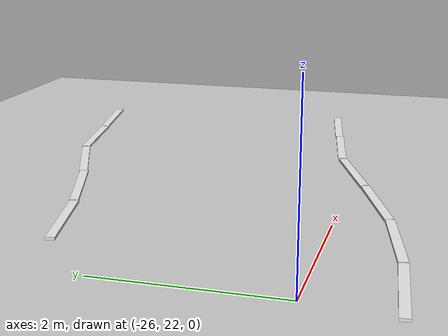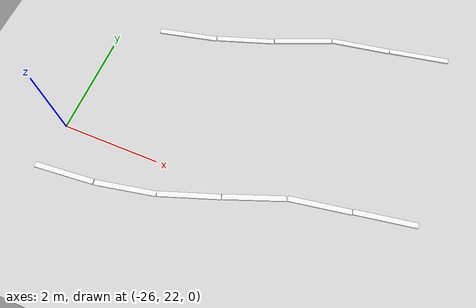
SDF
<sdf version="1.7">
 <world name="default">
  <model name="ground_plane">
   <static>1</static>
   <link name="link">
    <collision name="collision">
     <geometry><plane><normal>0 0 1</normal><size>100 100</size></plane></geometry>
     <surface><friction><ode><mu>100</mu><mu2>50</mu2></ode></friction></surface>
    </collision>
    <visual name="visual">
     <cast_shadows>0</cast_shadows>
     <geometry><plane><normal>0 0 1</normal><size>100 100</size></plane></geometry>
     <material>
      <script><uri>file://media/materials/scripts/gazebo.material</uri><name>Gazebo/Grey</name></script>
     </material>
    </visual>
   </link>
  </model>
  <model name="road_way_clone_clone_clone_0_clone_clone_clone_clone_0_clone_0_clone_0_clone_clone_clone_clone_clone_clone">
   <link name="link">
    <inertial>
     <mass>1</mass>
     <inertia>
      <ixx>0.166667</ixx>
      <ixy>0</ixy>
      <ixz>0</ixz>
      <iyy>0.166667</iyy>
      <iyz>0</iyz>
      <izz>0.166667</izz>
     </inertia>
    </inertial>
    <visual name="visual">
     <geometry><box><size>0.106644 1.22348 0.03129</size></box></geometry>
     <material>
      <script><name>Gazebo/White</name><uri>file://media/materials/scripts/gazebo.material</uri></script>
      <shader type="pixel"><normal_map>__default__</normal_map></shader>
      <ambient>1 1 1 1</ambient>
      <diffuse>1 1 1 1</diffuse>
      <specular>0 0 0 1</specular>
      <emissive>0 0 0 1</emissive>
     </material>
    </visual>
    <collision name="collision">
     <geometry><box><size>0.10644 1.22348 0.03129</size></box></geometry>
     <surface>
      <friction>
       <ode><mu>1</mu><mu2>1</mu2><fdir1>0 0 0</fdir1><slip1>0</slip1><slip2>0</slip2></ode>
       <torsional>
        <coefficient>1</coefficient>
        <patch_radius>0</patch_radius>
        <surface_radius>0</surface_radius>
        <use_patch_radius>1</use_patch_radius>
        <ode><slip>0</slip></ode>
       </torsional>
      </friction>
      <bounce><restitution_coefficient>0</restitution_coefficient><threshold>1e+06</threshold></bounce>
      <contact>
       <collide_without_contact>0</collide_without_contact>
       <collide_without_contact_bitmask>1</collide_without_contact_bitmask>
       <collide_bitmask>1</collide_bitmask>
       <ode>
        <soft_cfm>0</soft_cfm>
        <soft_erp>0.2</soft_erp>
        <kp>1e+13</kp>
        <kd>1</kd>
        <max_vel>0.01</max_vel>
        <min_depth>0</min_depth>
       </ode>
       <bullet>
        <split_impulse>1</split_impulse>
        <split_impulse_penetration_threshold>-0.01</split_impulse_penetration_threshold>
        <soft_cfm>0</soft_cfm>
        <soft_erp>0.2</soft_erp>
        <kp>1e+13</kp>
        <kd>1</kd>
       </bullet>
      </contact>
     </surface>
    </collision>
   </link>
   <static>0</static>
   <pose>-19.5677 22.5895 0.015638 -1.1e-05 -0 1.73845</pose>
  </model>
  <model name="road_way_clone_clone_clone_0_clone_clone_clone_clone_0_clone_0_clone_0_clone_clone_clone_clone_clone_clone_clone">
   <link name="link">
    <inertial>
     <mass>1</mass>
     <inertia>
      <ixx>0.166667</ixx>
      <ixy>0</ixy>
      <ixz>0</ixz>
      <iyy>0.166667</iyy>
      <iyz>0</iyz>
      <izz>0.166667</izz>
     </inertia>
    </inertial>
    <visual name="visual">
     <geometry><box><size>0.106644 1.22348 0.03129</size></box></geometry>
     <material>
      <script><name>Gazebo/White</name><uri>file://media/materials/scripts/gazebo.material</uri></script>
      <shader type="pixel"><normal_map>__default__</normal_map></shader>
      <ambient>1 1 1 1</ambient>
      <diffuse>1 1 1 1</diffuse>
      <specular>0 0 0 1</specular>
      <emissive>0 0 0 1</emissive>
     </material>
    </visual>
    <collision name="collision">
     <geometry><box><size>0.10644 1.22348 0.03129</size></box></geometry>
     <surface>
      <friction>
       <ode><mu>1</mu><mu2>1</mu2><fdir1>0 0 0</fdir1><slip1>0</slip1><slip2>0</slip2></ode>
       <torsional>
        <coefficient>1</coefficient>
        <patch_radius>0</patch_radius>
        <surface_radius>0</surface_radius>
        <use_patch_radius>1</use_patch_radius>
        <ode><slip>0</slip></ode>
       </torsional>
      </friction>
      <bounce><restitution_coefficient>0</restitution_coefficient><threshold>1e+06</threshold></bounce>
      <contact>
       <collide_without_contact>0</collide_without_contact>
       <collide_without_contact_bitmask>1</collide_without_contact_bitmask>
       <collide_bitmask>1</collide_bitmask>
       <ode>
        <soft_cfm>0</soft_cfm>
        <soft_erp>0.2</soft_erp>
        <kp>1e+13</kp>
        <kd>1</kd>
        <max_vel>0.01</max_vel>
        <min_depth>0</min_depth>
       </ode>
       <bullet>
        <split_impulse>1</split_impulse>
        <split_impulse_penetration_threshold>-0.01</split_impulse_penetration_threshold>
        <soft_cfm>0</soft_cfm>
        <soft_erp>0.2</soft_erp>
        <kp>1e+13</kp>
        <kd>1</kd>
       </bullet>
      </contact>
     </surface>
    </collision>
   </link>
   <static>0</static>
   <pose>-19.9178 26.2077 0.015638 1.1e-05 -0 1.75555</pose>
  </model>
  <model name="road_way_clone_clone_clone_0_clone_clone_clone_clone_0_clone_0_clone_0_clone_clone_clone_clone_clone_clone_clone_0">
   <link name="link">
    <inertial>
     <mass>1</mass>
     <inertia>
      <ixx>0.166667</ixx>
      <ixy>0</ixy>
      <ixz>0</ixz>
      <iyy>0.166667</iyy>
      <iyz>0</iyz>
      <izz>0.166667</izz>
     </inertia>
    </inertial>
    <visual name="visual">
     <geometry><box><size>0.106644 1.22348 0.03129</size></box></geometry>
     <material>
      <script><name>Gazebo/White</name><uri>file://media/materials/scripts/gazebo.material</uri></script>
      <shader type="pixel"><normal_map>__default__</normal_map></shader>
      <ambient>1 1 1 1</ambient>
      <diffuse>1 1 1 1</diffuse>
      <specular>0 0 0 1</specular>
      <emissive>0 0 0 1</emissive>
     </material>
    </visual>
    <collision name="collision">
     <geometry><box><size>0.10644 1.22348 0.03129</size></box></geometry>
     <surface>
      <friction>
       <ode><mu>1</mu><mu2>1</mu2><fdir1>0 0 0</fdir1><slip1>0</slip1><slip2>0</slip2></ode>
       <torsional>
        <coefficient>1</coefficient>
        <patch_radius>0</patch_radius>
        <surface_radius>0</surface_radius>
        <use_patch_radius>1</use_patch_radius>
        <ode><slip>0</slip></ode>
       </torsional>
      </friction>
      <bounce><restitution_coefficient>0</restitution_coefficient><threshold>1e+06</threshold></bounce>
      <contact>
       <collide_without_contact>0</collide_without_contact>
       <collide_without_contact_bitmask>1</collide_without_contact_bitmask>
       <collide_bitmask>1</collide_bitmask>
       <ode>
        <soft_cfm>0</soft_cfm>
        <soft_erp>0.2</soft_erp>
        <kp>1e+13</kp>
        <kd>1</kd>
        <max_vel>0.01</max_vel>
        <min_depth>0</min_depth>
       </ode>
       <bullet>
        <split_impulse>1</split_impulse>
        <split_impulse_penetration_threshold>-0.01</split_impulse_penetration_threshold>
        <soft_cfm>0</soft_cfm>
        <soft_erp>0.2</soft_erp>
        <kp>1e+13</kp>
        <kd>1</kd>
       </bullet>
      </contact>
     </surface>
    </collision>
   </link>
   <static>0</static>
   <pose>-21.125 25.9843 0.015638 -1.1e-05 0 1.73886</pose>
  </model>
  <model name="road_way_clone_clone_clone_0_clone_clone_clone_clone_0_clone_0_clone_0_clone_clone_clone_clone_clone_clone_clone_1">
   <link name="link">
    <inertial>
     <mass>1</mass>
     <inertia>
      <ixx>0.166667</ixx>
      <ixy>0</ixy>
      <ixz>0</ixz>
      <iyy>0.166667</iyy>
      <iyz>0</iyz>
      <izz>0.166667</izz>
     </inertia>
    </inertial>
    <visual name="visual">
     <geometry><box><size>0.106644 1.22348 0.03129</size></box></geometry>
     <material>
      <script><name>Gazebo/White</name><uri>file://media/materials/scripts/gazebo.material</uri></script>
      <shader type="pixel"><normal_map>__default__</normal_map></shader>
      <ambient>1 1 1 1</ambient>
      <diffuse>1 1 1 1</diffuse>
      <specular>0 0 0 1</specular>
      <emissive>0 0 0 1</emissive>
     </material>
    </visual>
    <collision name="collision">
     <geometry><box><size>0.10644 1.22348 0.03129</size></box></geometry>
     <surface>
      <friction>
       <ode><mu>1</mu><mu2>1</mu2><fdir1>0 0 0</fdir1><slip1>0</slip1><slip2>0</slip2></ode>
       <torsional>
        <coefficient>1</coefficient>
        <patch_radius>0</patch_radius>
        <surface_radius>0</surface_radius>
        <use_patch_radius>1</use_patch_radius>
        <ode><slip>0</slip></ode>
       </torsional>
      </friction>
      <bounce><restitution_coefficient>0</restitution_coefficient><threshold>1e+06</threshold></bounce>
      <contact>
       <collide_without_contact>0</collide_without_contact>
       <collide_without_contact_bitmask>1</collide_without_contact_bitmask>
       <collide_bitmask>1</collide_bitmask>
       <ode>
        <soft_cfm>0</soft_cfm>
        <soft_erp>0.2</soft_erp>
        <kp>1e+13</kp>
        <kd>1</kd>
        <max_vel>0.01</max_vel>
        <min_depth>0</min_depth>
       </ode>
       <bullet>
        <split_impulse>1</split_impulse>
        <split_impulse_penetration_threshold>-0.01</split_impulse_penetration_threshold>
        <soft_cfm>0</soft_cfm>
        <soft_erp>0.2</soft_erp>
        <kp>1e+13</kp>
        <kd>1</kd>
       </bullet>
      </contact>
     </surface>
    </collision>
   </link>
   <static>0</static>
   <pose>-20.7816 22.3719 0.015638 -1.1e-05 0 1.73886</pose>
  </model>
  <model name="road_way_clone_clone_clone_0_clone_clone_clone_clone_0_clone_0_clone_0_clone_clone_clone_clone_clone_clone_clone_2">
   <link name="link">
    <inertial>
     <mass>1</mass>
     <inertia>
      <ixx>0.166667</ixx>
      <ixy>0</ixy>
      <ixz>0</ixz>
      <iyy>0.166667</iyy>
      <iyz>0</iyz>
      <izz>0.166667</izz>
     </inertia>
    </inertial>
    <visual name="visual">
     <geometry><box><size>0.106644 1.22348 0.03129</size></box></geometry>
     <material>
      <script><name>Gazebo/White</name><uri>file://media/materials/scripts/gazebo.material</uri></script>
      <shader type="pixel"><normal_map>__default__</normal_map></shader>
      <ambient>1 1 1 1</ambient>
      <diffuse>1 1 1 1</diffuse>
      <specular>0 0 0 1</specular>
      <emissive>0 0 0 1</emissive>
     </material>
    </visual>
    <collision name="collision">
     <geometry><box><size>0.10644 1.22348 0.03129</size></box></geometry>
     <surface>
      <friction>
       <ode><mu>1</mu><mu2>1</mu2><fdir1>0 0 0</fdir1><slip1>0</slip1><slip2>0</slip2></ode>
       <torsional>
        <coefficient>1</coefficient>
        <patch_radius>0</patch_radius>
        <surface_radius>0</surface_radius>
        <use_patch_radius>1</use_patch_radius>
        <ode><slip>0</slip></ode>
       </torsional>
      </friction>
      <bounce><restitution_coefficient>0</restitution_coefficient><threshold>1e+06</threshold></bounce>
      <contact>
       <collide_without_contact>0</collide_without_contact>
       <collide_without_contact_bitmask>1</collide_without_contact_bitmask>
       <collide_bitmask>1</collide_bitmask>
       <ode>
        <soft_cfm>0</soft_cfm>
        <soft_erp>0.2</soft_erp>
        <kp>1e+13</kp>
        <kd>1</kd>
        <max_vel>0.01</max_vel>
        <min_depth>0</min_depth>
       </ode>
       <bullet>
        <split_impulse>1</split_impulse>
        <split_impulse_penetration_threshold>-0.01</split_impulse_penetration_threshold>
        <soft_cfm>0</soft_cfm>
        <soft_erp>0.2</soft_erp>
        <kp>1e+13</kp>
        <kd>1</kd>
       </bullet>
      </contact>
     </surface>
    </collision>
   </link>
   <static>0</static>
   <pose>-22.3044 25.6389 0.015638 -1.1e-05 -0 1.95789</pose>
  </model>
  <model name="road_way_clone_clone_clone_0_clone_clone_clone_clone_0_clone_0_clone_0_clone_clone_clone_clone_clone_clone_clone_3">
   <link name="link">
    <inertial>
     <mass>1</mass>
     <inertia>
      <ixx>0.166667</ixx>
      <ixy>0</ixy>
      <ixz>0</ixz>
      <iyy>0.166667</iyy>
      <iyz>0</iyz>
      <izz>0.166667</izz>
     </inertia>
    </inertial>
    <visual name="visual">
     <geometry><box><size>0.106644 1.22348 0.03129</size></box></geometry>
     <material>
      <script><name>Gazebo/White</name><uri>file://media/materials/scripts/gazebo.material</uri></script>
      <shader type="pixel"><normal_map>__default__</normal_map></shader>
      <ambient>1 1 1 1</ambient>
      <diffuse>1 1 1 1</diffuse>
      <specular>0 0 0 1</specular>
      <emissive>0 0 0 1</emissive>
     </material>
    </visual>
    <collision name="collision">
     <geometry><box><size>0.10644 1.22348 0.03129</size></box></geometry>
     <surface>
      <friction>
       <ode><mu>1</mu><mu2>1</mu2><fdir1>0 0 0</fdir1><slip1>0</slip1><slip2>0</slip2></ode>
       <torsional>
        <coefficient>1</coefficient>
        <patch_radius>0</patch_radius>
        <surface_radius>0</surface_radius>
        <use_patch_radius>1</use_patch_radius>
        <ode><slip>0</slip></ode>
       </torsional>
      </friction>
      <bounce><restitution_coefficient>0</restitution_coefficient><threshold>1e+06</threshold></bounce>
      <contact>
       <collide_without_contact>0</collide_without_contact>
       <collide_without_contact_bitmask>1</collide_without_contact_bitmask>
       <collide_bitmask>1</collide_bitmask>
       <ode>
        <soft_cfm>0</soft_cfm>
        <soft_erp>0.2</soft_erp>
        <kp>1e+13</kp>
        <kd>1</kd>
        <max_vel>0.01</max_vel>
        <min_depth>0</min_depth>
       </ode>
       <bullet>
        <split_impulse>1</split_impulse>
        <split_impulse_penetration_threshold>-0.01</split_impulse_penetration_threshold>
        <soft_cfm>0</soft_cfm>
        <soft_erp>0.2</soft_erp>
        <kp>1e+13</kp>
        <kd>1</kd>
       </bullet>
      </contact>
     </surface>
    </collision>
   </link>
   <static>0</static>
   <pose>-21.9725 22.0438 0.015638 1.1e-05 -0 1.92581</pose>
  </model>
  <model name="road_way_clone_clone_clone_0_clone_clone_clone_clone_0_clone_0_clone_0_clone_clone_clone_clone_clone_clone_clone_4">
   <link name="link">
    <inertial>
     <mass>1</mass>
     <inertia>
      <ixx>0.166667</ixx>
      <ixy>0</ixy>
      <ixz>0</ixz>
      <iyy>0.166667</iyy>
      <iyz>0</iyz>
      <izz>0.166667</izz>
     </inertia>
    </inertial>
    <visual name="visual">
     <geometry><box><size>0.106644 1.22348 0.03129</size></box></geometry>
     <material>
      <script><name>Gazebo/White</name><uri>file://media/materials/scripts/gazebo.material</uri></script>
      <shader type="pixel"><normal_map>__default__</normal_map></shader>
      <ambient>1 1 1 1</ambient>
      <diffuse>1 1 1 1</diffuse>
      <specular>0 0 0 1</specular>
      <emissive>0 0 0 1</emissive>
     </material>
    </visual>
    <collision name="collision">
     <geometry><box><size>0.10644 1.22348 0.03129</size></box></geometry>
     <surface>
      <friction>
       <ode><mu>1</mu><mu2>1</mu2><fdir1>0 0 0</fdir1><slip1>0</slip1><slip2>0</slip2></ode>
       <torsional>
        <coefficient>1</coefficient>
        <patch_radius>0</patch_radius>
        <surface_radius>0</surface_radius>
        <use_patch_radius>1</use_patch_radius>
        <ode><slip>0</slip></ode>
       </torsional>
      </friction>
      <bounce><restitution_coefficient>0</restitution_coefficient><threshold>1e+06</threshold></bounce>
      <contact>
       <collide_without_contact>0</collide_without_contact>
       <collide_without_contact_bitmask>1</collide_without_contact_bitmask>
       <collide_bitmask>1</collide_bitmask>
       <ode>
        <soft_cfm>0</soft_cfm>
        <soft_erp>0.2</soft_erp>
        <kp>1e+13</kp>
        <kd>1</kd>
        <max_vel>0.01</max_vel>
        <min_depth>0</min_depth>
       </ode>
       <bullet>
        <split_impulse>1</split_impulse>
        <split_impulse_penetration_threshold>-0.01</split_impulse_penetration_threshold>
        <soft_cfm>0</soft_cfm>
        <soft_erp>0.2</soft_erp>
        <kp>1e+13</kp>
        <kd>1</kd>
       </bullet>
      </contact>
     </surface>
    </collision>
   </link>
   <static>0</static>
   <pose>-23.4498 25.2019 0.015638 -1.1e-05 -0 1.89371</pose>
  </model>
  <model name="road_way_clone_clone_clone_0_clone_clone_clone_clone_0_clone_0_clone_0_clone_clone_clone_clone_clone_clone_clone_5">
   <link name="link">
    <inertial>
     <mass>1</mass>
     <inertia>
      <ixx>0.166667</ixx>
      <ixy>0</ixy>
      <ixz>0</ixz>
      <iyy>0.166667</iyy>
      <iyz>0</iyz>
      <izz>0.166667</izz>
     </inertia>
    </inertial>
    <visual name="visual">
     <geometry><box><size>0.106644 1.22348 0.03129</size></box></geometry>
     <material>
      <script><name>Gazebo/White</name><uri>file://media/materials/scripts/gazebo.material</uri></script>
      <shader type="pixel"><normal_map>__default__</normal_map></shader>
      <ambient>1 1 1 1</ambient>
      <diffuse>1 1 1 1</diffuse>
      <specular>0 0 0 1</specular>
      <emissive>0 0 0 1</emissive>
     </material>
    </visual>
    <collision name="collision">
     <geometry><box><size>0.10644 1.22348 0.03129</size></box></geometry>
     <surface>
      <friction>
       <ode><mu>1</mu><mu2>1</mu2><fdir1>0 0 0</fdir1><slip1>0</slip1><slip2>0</slip2></ode>
       <torsional>
        <coefficient>1</coefficient>
        <patch_radius>0</patch_radius>
        <surface_radius>0</surface_radius>
        <use_patch_radius>1</use_patch_radius>
        <ode><slip>0</slip></ode>
       </torsional>
      </friction>
      <bounce><restitution_coefficient>0</restitution_coefficient><threshold>1e+06</threshold></bounce>
      <contact>
       <collide_without_contact>0</collide_without_contact>
       <collide_without_contact_bitmask>1</collide_without_contact_bitmask>
       <collide_bitmask>1</collide_bitmask>
       <ode>
        <soft_cfm>0</soft_cfm>
        <soft_erp>0.2</soft_erp>
        <kp>1e+13</kp>
        <kd>1</kd>
        <max_vel>0.01</max_vel>
        <min_depth>0</min_depth>
       </ode>
       <bullet>
        <split_impulse>1</split_impulse>
        <split_impulse_penetration_threshold>-0.01</split_impulse_penetration_threshold>
        <soft_cfm>0</soft_cfm>
        <soft_erp>0.2</soft_erp>
        <kp>1e+13</kp>
        <kd>1</kd>
       </bullet>
      </contact>
     </surface>
    </collision>
   </link>
   <static>0</static>
   <pose>-23.1329 21.6218 0.015638 -1.1e-05 -0 1.90468</pose>
  </model>
  <model name="road_way_clone_clone_clone_0_clone_clone_clone_clone_0_clone_0_clone_0_clone_clone_clone_clone_clone_clone_clone_6">
   <link name="link">
    <inertial>
     <mass>1</mass>
     <inertia>
      <ixx>0.166667</ixx>
      <ixy>0</ixy>
      <ixz>0</ixz>
      <iyy>0.166667</iyy>
      <iyz>0</iyz>
      <izz>0.166667</izz>
     </inertia>
    </inertial>
    <visual name="visual">
     <geometry><box><size>0.106644 1.22348 0.03129</size></box></geometry>
     <material>
      <script><name>Gazebo/White</name><uri>file://media/materials/scripts/gazebo.material</uri></script>
      <shader type="pixel"><normal_map>__default__</normal_map></shader>
      <ambient>1 1 1 1</ambient>
      <diffuse>1 1 1 1</diffuse>
      <specular>0 0 0 1</specular>
      <emissive>0 0 0 1</emissive>
     </material>
    </visual>
    <collision name="collision">
     <geometry><box><size>0.10644 1.22348 0.03129</size></box></geometry>
     <surface>
      <friction>
       <ode><mu>1</mu><mu2>1</mu2><fdir1>0 0 0</fdir1><slip1>0</slip1><slip2>0</slip2></ode>
       <torsional>
        <coefficient>1</coefficient>
        <patch_radius>0</patch_radius>
        <surface_radius>0</surface_radius>
        <use_patch_radius>1</use_patch_radius>
        <ode><slip>0</slip></ode>
       </torsional>
      </friction>
      <bounce><restitution_coefficient>0</restitution_coefficient><threshold>1e+06</threshold></bounce>
      <contact>
       <collide_without_contact>0</collide_without_contact>
       <collide_without_contact_bitmask>1</collide_without_contact_bitmask>
       <collide_bitmask>1</collide_bitmask>
       <ode>
        <soft_cfm>0</soft_cfm>
        <soft_erp>0.2</soft_erp>
        <kp>1e+13</kp>
        <kd>1</kd>
        <max_vel>0.01</max_vel>
        <min_depth>0</min_depth>
       </ode>
       <bullet>
        <split_impulse>1</split_impulse>
        <split_impulse_penetration_threshold>-0.01</split_impulse_penetration_threshold>
        <soft_cfm>0</soft_cfm>
        <soft_erp>0.2</soft_erp>
        <kp>1e+13</kp>
        <kd>1</kd>
       </bullet>
      </contact>
     </surface>
    </collision>
   </link>
   <static>0</static>
   <pose>-24.3161 21.2943 0.015638 -1.1e-05 -0 1.76782</pose>
  </model>
  <model name="road_way_clone_clone_clone_0_clone_clone_clone_clone_0_clone_0_clone_0_clone_clone_clone_clone_clone_clone_clone_7">
   <link name="link">
    <inertial>
     <mass>1</mass>
     <inertia>
      <ixx>0.166667</ixx>
      <ixy>0</ixy>
      <ixz>0</ixz>
      <iyy>0.166667</iyy>
      <iyz>0</iyz>
      <izz>0.166667</izz>
     </inertia>
    </inertial>
    <visual name="visual">
     <geometry><box><size>0.106644 1.22348 0.03129</size></box></geometry>
     <material>
      <script><name>Gazebo/White</name><uri>file://media/materials/scripts/gazebo.material</uri></script>
      <shader type="pixel"><normal_map>__default__</normal_map></shader>
      <ambient>1 1 1 1</ambient>
      <diffuse>1 1 1 1</diffuse>
      <specular>0 0 0 1</specular>
      <emissive>0 0 0 1</emissive>
     </material>
    </visual>
    <collision name="collision">
     <geometry><box><size>0.10644 1.22348 0.03129</size></box></geometry>
     <surface>
      <friction>
       <ode><mu>1</mu><mu2>1</mu2><fdir1>0 0 0</fdir1><slip1>0</slip1><slip2>0</slip2></ode>
       <torsional>
        <coefficient>1</coefficient>
        <patch_radius>0</patch_radius>
        <surface_radius>0</surface_radius>
        <use_patch_radius>1</use_patch_radius>
        <ode><slip>0</slip></ode>
       </torsional>
      </friction>
      <bounce><restitution_coefficient>0</restitution_coefficient><threshold>1e+06</threshold></bounce>
      <contact>
       <collide_without_contact>0</collide_without_contact>
       <collide_without_contact_bitmask>1</collide_without_contact_bitmask>
       <collide_bitmask>1</collide_bitmask>
       <ode>
        <soft_cfm>0</soft_cfm>
        <soft_erp>0.2</soft_erp>
        <kp>1e+13</kp>
        <kd>1</kd>
        <max_vel>0.01</max_vel>
        <min_depth>0</min_depth>
       </ode>
       <bullet>
        <split_impulse>1</split_impulse>
        <split_impulse_penetration_threshold>-0.01</split_impulse_penetration_threshold>
        <soft_cfm>0</soft_cfm>
        <soft_erp>0.2</soft_erp>
        <kp>1e+13</kp>
        <kd>1</kd>
       </bullet>
      </contact>
     </surface>
    </collision>
   </link>
   <static>0</static>
   <pose>-24.6346 24.8608 0.015638 1.1e-05 0 1.79476</pose>
  </model>
  <model name="road_way_clone_clone_clone_0_clone_clone_clone_clone_0_clone_0_clone_0_clone_clone_clone_clone_clone_clone_clone_9">
   <link name="link">
    <inertial>
     <mass>1</mass>
     <inertia>
      <ixx>0.166667</ixx>
      <ixy>0</ixy>
      <ixz>0</ixz>
      <iyy>0.166667</iyy>
      <iyz>0</iyz>
      <izz>0.166667</izz>
     </inertia>
    </inertial>
    <visual name="visual">
     <geometry><box><size>0.106644 1.22348 0.03129</size></box></geometry>
     <material>
      <script><name>Gazebo/White</name><uri>file://media/materials/scripts/gazebo.material</uri></script>
      <shader type="pixel"><normal_map>__default__</normal_map></shader>
      <ambient>1 1 1 1</ambient>
      <diffuse>1 1 1 1</diffuse>
      <specular>0 0 0 1</specular>
      <emissive>0 0 0 1</emissive>
     </material>
    </visual>
    <collision name="collision">
     <geometry><box><size>0.10644 1.22348 0.03129</size></box></geometry>
     <surface>
      <friction>
       <ode><mu>1</mu><mu2>1</mu2><fdir1>0 0 0</fdir1><slip1>0</slip1><slip2>0</slip2></ode>
       <torsional>
        <coefficient>1</coefficient>
        <patch_radius>0</patch_radius>
        <surface_radius>0</surface_radius>
        <use_patch_radius>1</use_patch_radius>
        <ode><slip>0</slip></ode>
       </torsional>
      </friction>
      <bounce><restitution_coefficient>0</restitution_coefficient><threshold>1e+06</threshold></bounce>
      <contact>
       <collide_without_contact>0</collide_without_contact>
       <collide_without_contact_bitmask>1</collide_without_contact_bitmask>
       <collide_bitmask>1</collide_bitmask>
       <ode>
        <soft_cfm>0</soft_cfm>
        <soft_erp>0.2</soft_erp>
        <kp>1e+13</kp>
        <kd>1</kd>
        <max_vel>0.01</max_vel>
        <min_depth>0</min_depth>
       </ode>
       <bullet>
        <split_impulse>1</split_impulse>
        <split_impulse_penetration_threshold>-0.01</split_impulse_penetration_threshold>
        <soft_cfm>0</soft_cfm>
        <soft_erp>0.2</soft_erp>
        <kp>1e+13</kp>
        <kd>1</kd>
       </bullet>
      </contact>
     </surface>
    </collision>
   </link>
   <static>0</static>
   <pose>-25.5405 21.1202 0.015638 1.1e-05 0 1.66019</pose>
  </model>
 </world>
</sdf>
